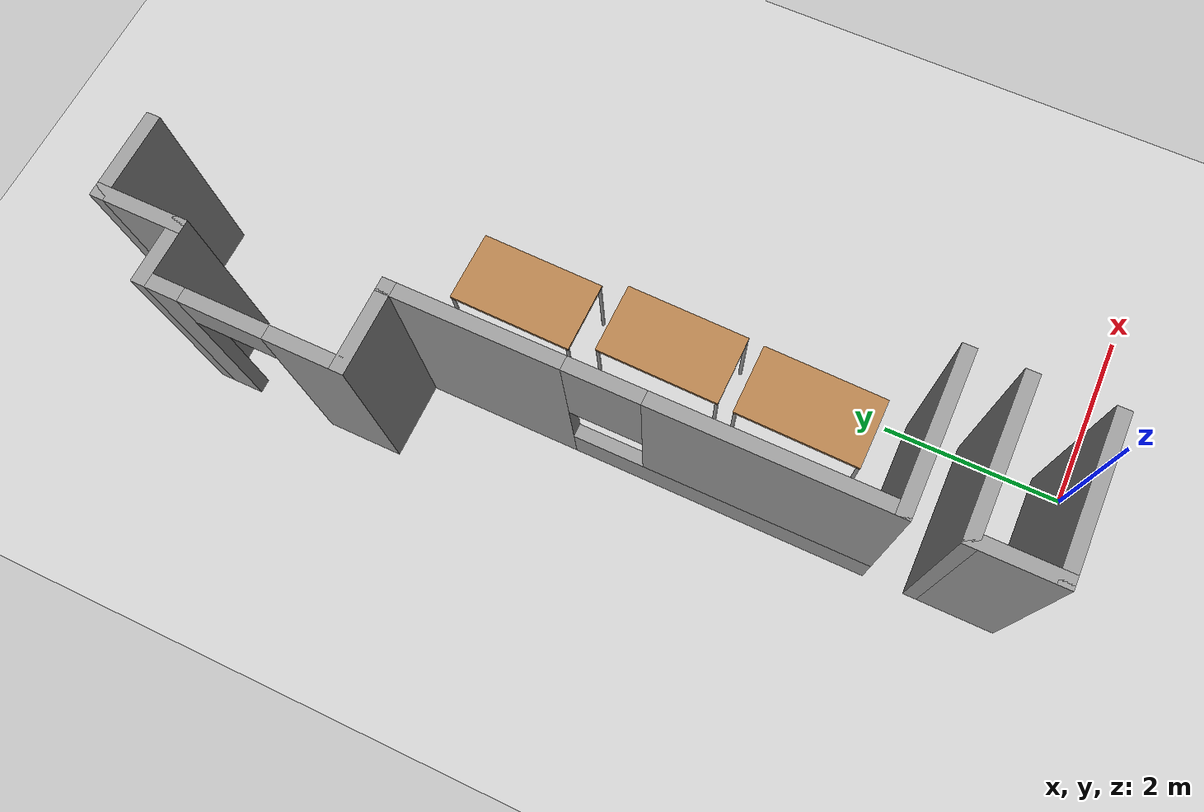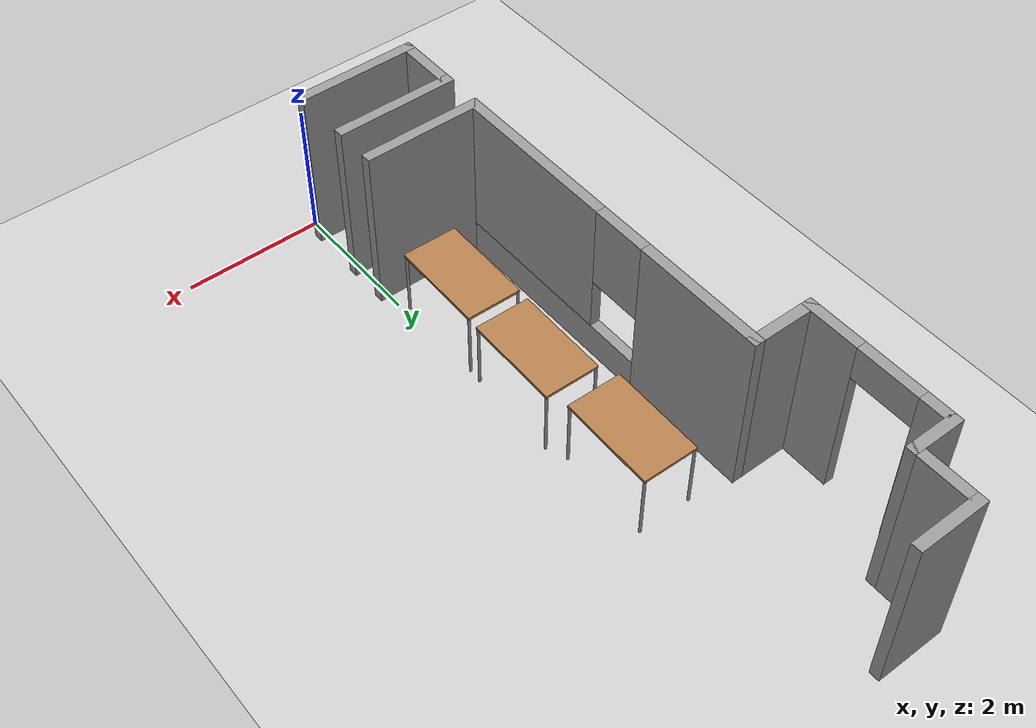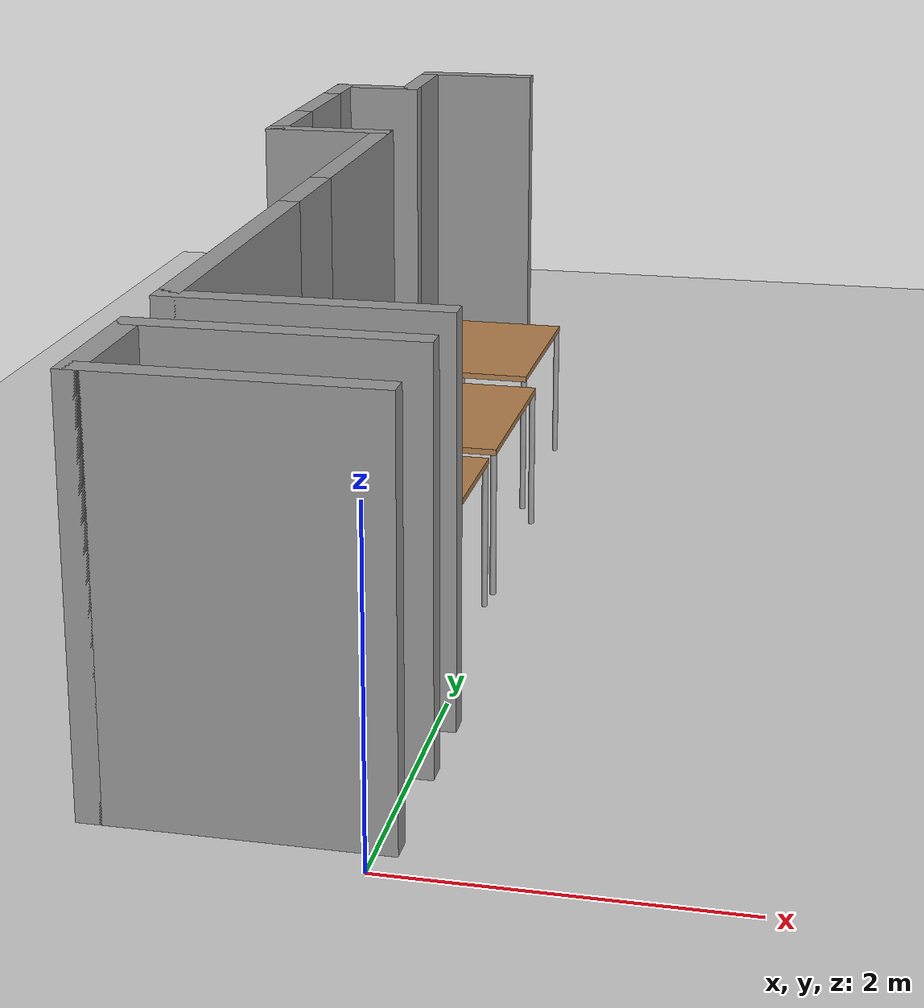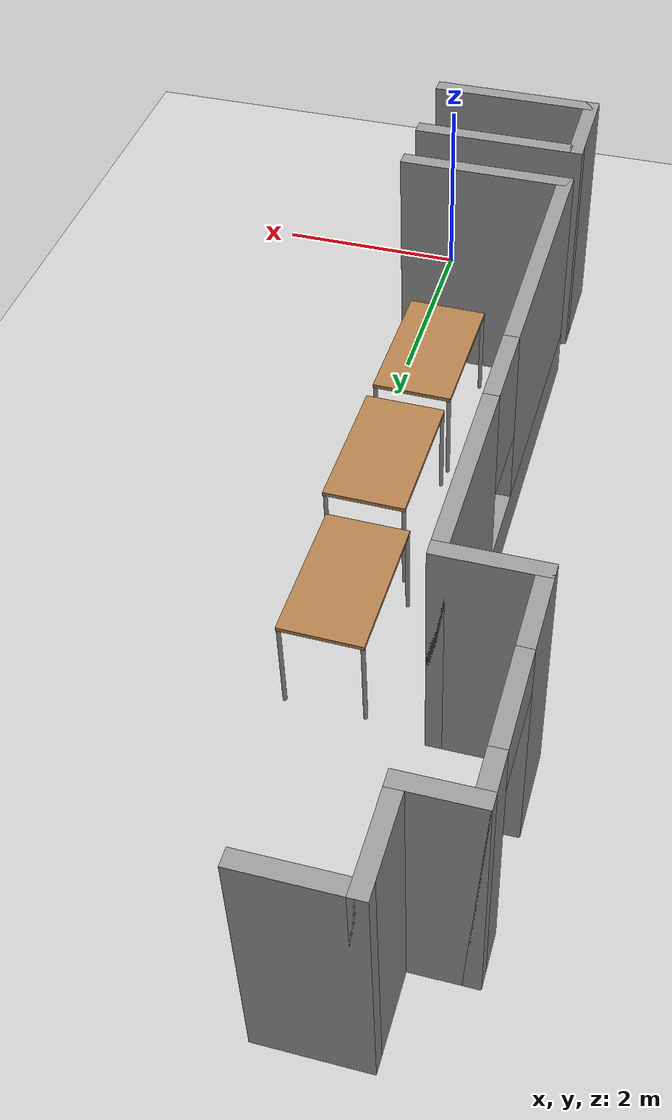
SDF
<sdf version="1.6">
 <world name="default">
  <model name="ground_plane">
   <static>1</static>
   <link name="link">
    <collision name="collision">
     <geometry><plane><normal>0 0 1</normal><size>100 100</size></plane></geometry>
     <surface><friction><ode><mu>100</mu><mu2>50</mu2></ode></friction></surface>
    </collision>
    <visual name="visual">
     <cast_shadows>0</cast_shadows>
     <geometry><plane><normal>0 0 1</normal><size>100 100</size></plane></geometry>
     <material>
      <script><uri>file://media/materials/scripts/gazebo.material</uri><name>Gazebo/Grey</name></script>
     </material>
    </visual>
   </link>
  </model>
  <model name="table">
   <static>0</static>
   <link name="link">
    <collision name="surface">
     <pose>0 0 1 0 -0 0</pose>
     <geometry><box><size>1.5 0.8 0.03</size></box></geometry>
     <surface><friction><ode><mu>0.6</mu><mu2>0.6</mu2></ode></friction></surface>
    </collision>
    <visual name="visual1">
     <pose>0 0 1 0 -0 0</pose>
     <geometry><box><size>1.4 0.8 0.04</size></box></geometry>
     <material>
      <script><uri>file://media/materials/scripts/gazebo.material</uri><name>Gazebo/Wood</name></script>
     </material>
    </visual>
    <collision name="front_left_leg">
     <pose>0.68 0.38 0.5 0 -0 0</pose>
     <geometry><cylinder><radius>0.02</radius><length>1</length></cylinder></geometry>
    </collision>
    <visual name="front_left_leg">
     <pose>0.68 0.38 0.5 0 -0 0</pose>
     <geometry><cylinder><radius>0.02</radius><length>1</length></cylinder></geometry>
     <material>
      <script><uri>file://media/materials/scripts/gazebo.material</uri><name>Gazebo/Grey</name></script>
     </material>
    </visual>
    <collision name="front_right_leg">
     <pose>0.68 -0.38 0.5 0 -0 0</pose>
     <geometry><cylinder><radius>0.02</radius><length>1</length></cylinder></geometry>
    </collision>
    <visual name="front_right_leg">
     <pose>0.68 -0.38 0.5 0 -0 0</pose>
     <geometry><cylinder><radius>0.02</radius><length>1</length></cylinder></geometry>
     <material>
      <script><uri>file://media/materials/scripts/gazebo.material</uri><name>Gazebo/Grey</name></script>
     </material>
    </visual>
    <collision name="back_right_leg">
     <pose>-0.68 -0.38 0.5 0 -0 0</pose>
     <geometry><cylinder><radius>0.02</radius><length>1</length></cylinder></geometry>
    </collision>
    <visual name="back_right_leg">
     <pose>-0.68 -0.38 0.5 0 -0 0</pose>
     <geometry><cylinder><radius>0.02</radius><length>1</length></cylinder></geometry>
     <material>
      <script><uri>file://media/materials/scripts/gazebo.material</uri><name>Gazebo/Grey</name></script>
     </material>
    </visual>
    <collision name="back_left_leg">
     <pose>-0.68 0.38 0.5 0 -0 0</pose>
     <geometry><cylinder><radius>0.02</radius><length>1</length></cylinder></geometry>
    </collision>
    <visual name="back_left_leg">
     <pose>-0.68 0.38 0.5 0 -0 0</pose>
     <geometry><cylinder><radius>0.02</radius><length>1</length></cylinder></geometry>
     <material>
      <script><uri>file://media/materials/scripts/gazebo.material</uri><name>Gazebo/Grey</name></script>
     </material>
    </visual>
    <inertial>
     <inertia><ixx>1</ixx><ixy>0</ixy><ixz>0</ixz><iyy>1</iyy><iyz>0</iyz><izz>1</izz></inertia>
     <mass>1</mass>
    </inertial>
   </link>
   <pose>-0.462285 2.82795 -9e-06 0 1e-06 1.55518</pose>
  </model>
  <model name="table_clone">
   <static>0</static>
   <link name="link">
    <collision name="surface">
     <pose>0 0 1 0 -0 0</pose>
     <geometry><box><size>1.5 0.8 0.03</size></box></geometry>
     <surface><friction><ode><mu>0.6</mu><mu2>0.6</mu2></ode></friction></surface>
    </collision>
    <visual name="visual1">
     <pose>0 0 1 0 -0 0</pose>
     <geometry><box><size>1.4 0.8 0.04</size></box></geometry>
     <material>
      <script><uri>file://media/materials/scripts/gazebo.material</uri><name>Gazebo/Wood</name></script>
     </material>
    </visual>
    <collision name="front_left_leg">
     <pose>0.68 0.38 0.5 0 -0 0</pose>
     <geometry><cylinder><radius>0.02</radius><length>1</length></cylinder></geometry>
    </collision>
    <visual name="front_left_leg">
     <pose>0.68 0.38 0.5 0 -0 0</pose>
     <geometry><cylinder><radius>0.02</radius><length>1</length></cylinder></geometry>
     <material>
      <script><uri>file://media/materials/scripts/gazebo.material</uri><name>Gazebo/Grey</name></script>
     </material>
    </visual>
    <collision name="front_right_leg">
     <pose>0.68 -0.38 0.5 0 -0 0</pose>
     <geometry><cylinder><radius>0.02</radius><length>1</length></cylinder></geometry>
    </collision>
    <visual name="front_right_leg">
     <pose>0.68 -0.38 0.5 0 -0 0</pose>
     <geometry><cylinder><radius>0.02</radius><length>1</length></cylinder></geometry>
     <material>
      <script><uri>file://media/materials/scripts/gazebo.material</uri><name>Gazebo/Grey</name></script>
     </material>
    </visual>
    <collision name="back_right_leg">
     <pose>-0.68 -0.38 0.5 0 -0 0</pose>
     <geometry><cylinder><radius>0.02</radius><length>1</length></cylinder></geometry>
    </collision>
    <visual name="back_right_leg">
     <pose>-0.68 -0.38 0.5 0 -0 0</pose>
     <geometry><cylinder><radius>0.02</radius><length>1</length></cylinder></geometry>
     <material>
      <script><uri>file://media/materials/scripts/gazebo.material</uri><name>Gazebo/Grey</name></script>
     </material>
    </visual>
    <collision name="back_left_leg">
     <pose>-0.68 0.38 0.5 0 -0 0</pose>
     <geometry><cylinder><radius>0.02</radius><length>1</length></cylinder></geometry>
    </collision>
    <visual name="back_left_leg">
     <pose>-0.68 0.38 0.5 0 -0 0</pose>
     <geometry><cylinder><radius>0.02</radius><length>1</length></cylinder></geometry>
     <material>
      <script><uri>file://media/materials/scripts/gazebo.material</uri><name>Gazebo/Grey</name></script>
     </material>
    </visual>
    <inertial>
     <inertia><ixx>1</ixx><ixy>0</ixy><ixz>0</ixz><iyy>1</iyy><iyz>0</iyz><izz>1</izz></inertia>
     <mass>1</mass>
    </inertial>
   </link>
   <pose>-0.425887 4.40027 -9e-06 0 1e-06 1.55518</pose>
  </model>
  <model name="table_clone_0">
   <static>0</static>
   <link name="link">
    <collision name="surface">
     <pose>0 0 1 0 -0 0</pose>
     <geometry><box><size>1.5 0.8 0.03</size></box></geometry>
     <surface><friction><ode><mu>0.6</mu><mu2>0.6</mu2></ode></friction></surface>
    </collision>
    <visual name="visual1">
     <pose>0 0 1 0 -0 0</pose>
     <geometry><box><size>1.4 0.8 0.04</size></box></geometry>
     <material>
      <script><uri>file://media/materials/scripts/gazebo.material</uri><name>Gazebo/Wood</name></script>
     </material>
    </visual>
    <collision name="front_left_leg">
     <pose>0.68 0.38 0.5 0 -0 0</pose>
     <geometry><cylinder><radius>0.02</radius><length>1</length></cylinder></geometry>
    </collision>
    <visual name="front_left_leg">
     <pose>0.68 0.38 0.5 0 -0 0</pose>
     <geometry><cylinder><radius>0.02</radius><length>1</length></cylinder></geometry>
     <material>
      <script><uri>file://media/materials/scripts/gazebo.material</uri><name>Gazebo/Grey</name></script>
     </material>
    </visual>
    <collision name="front_right_leg">
     <pose>0.68 -0.38 0.5 0 -0 0</pose>
     <geometry><cylinder><radius>0.02</radius><length>1</length></cylinder></geometry>
    </collision>
    <visual name="front_right_leg">
     <pose>0.68 -0.38 0.5 0 -0 0</pose>
     <geometry><cylinder><radius>0.02</radius><length>1</length></cylinder></geometry>
     <material>
      <script><uri>file://media/materials/scripts/gazebo.material</uri><name>Gazebo/Grey</name></script>
     </material>
    </visual>
    <collision name="back_right_leg">
     <pose>-0.68 -0.38 0.5 0 -0 0</pose>
     <geometry><cylinder><radius>0.02</radius><length>1</length></cylinder></geometry>
    </collision>
    <visual name="back_right_leg">
     <pose>-0.68 -0.38 0.5 0 -0 0</pose>
     <geometry><cylinder><radius>0.02</radius><length>1</length></cylinder></geometry>
     <material>
      <script><uri>file://media/materials/scripts/gazebo.material</uri><name>Gazebo/Grey</name></script>
     </material>
    </visual>
    <collision name="back_left_leg">
     <pose>-0.68 0.38 0.5 0 -0 0</pose>
     <geometry><cylinder><radius>0.02</radius><length>1</length></cylinder></geometry>
    </collision>
    <visual name="back_left_leg">
     <pose>-0.68 0.38 0.5 0 -0 0</pose>
     <geometry><cylinder><radius>0.02</radius><length>1</length></cylinder></geometry>
     <material>
      <script><uri>file://media/materials/scripts/gazebo.material</uri><name>Gazebo/Grey</name></script>
     </material>
    </visual>
    <inertial>
     <inertia><ixx>1</ixx><ixy>0</ixy><ixz>0</ixz><iyy>1</iyy><iyz>0</iyz><izz>1</izz></inertia>
     <mass>1</mass>
    </inertial>
   </link>
   <pose>-0.519405 6.05381 -9e-06 0 1e-06 1.55518</pose>
  </model>
  <model name="paredes_simplepilab_0">
   <link name="Wall_10">
    <pose>-6.50578 1.29029 0 0 -0 0</pose>
    <visual name="Wall_10_Visual">
     <pose>0 0 1.25 0 -0 0</pose>
     <geometry><box><size>1 0.15 2.5</size></box></geometry>
     <material>
      <script><uri>file://media/materials/scripts/gazebo.material</uri><name>Gazebo/Grey</name></script>
      <ambient>1 1 1 1</ambient>
      <diffuse>0.7 0.7 0.7 1</diffuse>
      <specular>0.01 0.01 0.01 1</specular>
      <emissive>0 0 0 1</emissive>
     </material>
    </visual>
    <collision name="Wall_10_Collision">
     <pose>0 0 1.25 0 -0 0</pose>
     <geometry><box><size>1 0.15 2.5</size></box></geometry>
     <surface>
      <friction>
       <ode><mu>1</mu><mu2>1</mu2><fdir1>0 0 0</fdir1><slip1>0</slip1><slip2>0</slip2></ode>
       <torsional>
        <coefficient>1</coefficient>
        <patch_radius>0</patch_radius>
        <surface_radius>0</surface_radius>
        <use_patch_radius>1</use_patch_radius>
        <ode><slip>0</slip></ode>
       </torsional>
      </friction>
      <bounce><restitution_coefficient>0</restitution_coefficient><threshold>1e+06</threshold></bounce>
      <contact>
       <collide_without_contact>0</collide_without_contact>
       <collide_without_contact_bitmask>1</collide_without_contact_bitmask>
       <collide_bitmask>1</collide_bitmask>
       <ode>
        <soft_cfm>0</soft_cfm>
        <soft_erp>0.2</soft_erp>
        <kp>1e+13</kp>
        <kd>1</kd>
        <max_vel>0.01</max_vel>
        <min_depth>0</min_depth>
       </ode>
       <bullet>
        <split_impulse>1</split_impulse>
        <split_impulse_penetration_threshold>-0.01</split_impulse_penetration_threshold>
        <soft_cfm>0</soft_cfm>
        <soft_erp>0.2</soft_erp>
        <kp>1e+13</kp>
        <kd>1</kd>
       </bullet>
      </contact>
     </surface>
    </collision>
   </link>
   <link name="Wall_11">
    <pose>-6.08078 -1.25971 0 0 0 -1.5708</pose>
    <visual name="Wall_11_Visual_0">
     <pose>-1.67591 0 1.25 0 -0 0</pose>
     <geometry><box><size>1.89818 0.15 2.5</size></box></geometry>
     <material>
      <script><uri>file://media/materials/scripts/gazebo.material</uri><name>Gazebo/Grey</name></script>
      <ambient>1 1 1 1</ambient>
      <diffuse>0.7 0.7 0.7 1</diffuse>
      <specular>0.01 0.01 0.01 1</specular>
      <emissive>0 0 0 1</emissive>
     </material>
    </visual>
    <visual name="Wall_11_Visual_1">
     <pose>0.94909 0 0.25 0 -0 0</pose>
     <geometry><box><size>3.35182 0.15 0.5</size></box></geometry>
     <material>
      <script><uri>file://media/materials/scripts/gazebo.material</uri><name>Gazebo/Grey</name></script>
      <ambient>1 1 1 1</ambient>
      <diffuse>0.7 0.7 0.7 1</diffuse>
      <specular>0.01 0.01 0.01 1</specular>
      <emissive>0 0 0 1</emissive>
     </material>
    </visual>
    <visual name="Wall_11_Visual_2">
     <pose>1.34909 0 1.5 0 -0 0</pose>
     <geometry><box><size>2.55182 0.15 2</size></box></geometry>
     <material>
      <script><uri>file://media/materials/scripts/gazebo.material</uri><name>Gazebo/Grey</name></script>
      <ambient>1 1 1 1</ambient>
      <diffuse>0.7 0.7 0.7 1</diffuse>
      <specular>0.01 0.01 0.01 1</specular>
      <emissive>0 0 0 1</emissive>
     </material>
    </visual>
    <visual name="Wall_11_Visual_3">
     <pose>-0.32682 0 1.9 0 -0 0</pose>
     <geometry><box><size>0.8 0.15 1.2</size></box></geometry>
     <material>
      <script><uri>file://media/materials/scripts/gazebo.material</uri><name>Gazebo/Grey</name></script>
      <ambient>1 1 1 1</ambient>
      <diffuse>0.7 0.7 0.7 1</diffuse>
      <specular>0.01 0.01 0.01 1</specular>
      <emissive>0 0 0 1</emissive>
     </material>
    </visual>
    <collision name="Wall_11_Collision_0">
     <pose>-1.67591 0 1.25 0 -0 0</pose>
     <geometry><box><size>1.89818 0.15 2.5</size></box></geometry>
     <surface>
      <friction>
       <ode><mu>1</mu><mu2>1</mu2><fdir1>0 0 0</fdir1><slip1>0</slip1><slip2>0</slip2></ode>
       <torsional>
        <coefficient>1</coefficient>
        <patch_radius>0</patch_radius>
        <surface_radius>0</surface_radius>
        <use_patch_radius>1</use_patch_radius>
        <ode><slip>0</slip></ode>
       </torsional>
      </friction>
      <bounce><restitution_coefficient>0</restitution_coefficient><threshold>1e+06</threshold></bounce>
      <contact>
       <collide_without_contact>0</collide_without_contact>
       <collide_without_contact_bitmask>1</collide_without_contact_bitmask>
       <collide_bitmask>1</collide_bitmask>
       <ode>
        <soft_cfm>0</soft_cfm>
        <soft_erp>0.2</soft_erp>
        <kp>1e+13</kp>
        <kd>1</kd>
        <max_vel>0.01</max_vel>
        <min_depth>0</min_depth>
       </ode>
       <bullet>
        <split_impulse>1</split_impulse>
        <split_impulse_penetration_threshold>-0.01</split_impulse_penetration_threshold>
        <soft_cfm>0</soft_cfm>
        <soft_erp>0.2</soft_erp>
        <kp>1e+13</kp>
        <kd>1</kd>
       </bullet>
      </contact>
     </surface>
    </collision>
    <collision name="Wall_11_Collision_1">
     <pose>0.94909 0 0.25 0 -0 0</pose>
     <geometry><box><size>3.35182 0.15 0.5</size></box></geometry>
     <surface>
      <friction>
       <ode><mu>1</mu><mu2>1</mu2><fdir1>0 0 0</fdir1><slip1>0</slip1><slip2>0</slip2></ode>
       <torsional>
        <coefficient>1</coefficient>
        <patch_radius>0</patch_radius>
        <surface_radius>0</surface_radius>
        <use_patch_radius>1</use_patch_radius>
        <ode><slip>0</slip></ode>
       </torsional>
      </friction>
      <bounce><restitution_coefficient>0</restitution_coefficient><threshold>1e+06</threshold></bounce>
      <contact>
       <collide_without_contact>0</collide_without_contact>
       <collide_without_contact_bitmask>1</collide_without_contact_bitmask>
       <collide_bitmask>1</collide_bitmask>
       <ode>
        <soft_cfm>0</soft_cfm>
        <soft_erp>0.2</soft_erp>
        <kp>1e+13</kp>
        <kd>1</kd>
        <max_vel>0.01</max_vel>
        <min_depth>0</min_depth>
       </ode>
       <bullet>
        <split_impulse>1</split_impulse>
        <split_impulse_penetration_threshold>-0.01</split_impulse_penetration_threshold>
        <soft_cfm>0</soft_cfm>
        <soft_erp>0.2</soft_erp>
        <kp>1e+13</kp>
        <kd>1</kd>
       </bullet>
      </contact>
     </surface>
    </collision>
    <collision name="Wall_11_Collision_2">
     <pose>1.34909 0 1.5 0 -0 0</pose>
     <geometry><box><size>2.55182 0.15 2</size></box></geometry>
     <surface>
      <friction>
       <ode><mu>1</mu><mu2>1</mu2><fdir1>0 0 0</fdir1><slip1>0</slip1><slip2>0</slip2></ode>
       <torsional>
        <coefficient>1</coefficient>
        <patch_radius>0</patch_radius>
        <surface_radius>0</surface_radius>
        <use_patch_radius>1</use_patch_radius>
        <ode><slip>0</slip></ode>
       </torsional>
      </friction>
      <bounce><restitution_coefficient>0</restitution_coefficient><threshold>1e+06</threshold></bounce>
      <contact>
       <collide_without_contact>0</collide_without_contact>
       <collide_without_contact_bitmask>1</collide_without_contact_bitmask>
       <collide_bitmask>1</collide_bitmask>
       <ode>
        <soft_cfm>0</soft_cfm>
        <soft_erp>0.2</soft_erp>
        <kp>1e+13</kp>
        <kd>1</kd>
        <max_vel>0.01</max_vel>
        <min_depth>0</min_depth>
       </ode>
       <bullet>
        <split_impulse>1</split_impulse>
        <split_impulse_penetration_threshold>-0.01</split_impulse_penetration_threshold>
        <soft_cfm>0</soft_cfm>
        <soft_erp>0.2</soft_erp>
        <kp>1e+13</kp>
        <kd>1</kd>
       </bullet>
      </contact>
     </surface>
    </collision>
    <collision name="Wall_11_Collision_3">
     <pose>-0.32682 0 1.9 0 -0 0</pose>
     <geometry><box><size>0.8 0.15 1.2</size></box></geometry>
     <surface>
      <friction>
       <ode><mu>1</mu><mu2>1</mu2><fdir1>0 0 0</fdir1><slip1>0</slip1><slip2>0</slip2></ode>
       <torsional>
        <coefficient>1</coefficient>
        <patch_radius>0</patch_radius>
        <surface_radius>0</surface_radius>
        <use_patch_radius>1</use_patch_radius>
        <ode><slip>0</slip></ode>
       </torsional>
      </friction>
      <bounce><restitution_coefficient>0</restitution_coefficient><threshold>1e+06</threshold></bounce>
      <contact>
       <collide_without_contact>0</collide_without_contact>
       <collide_without_contact_bitmask>1</collide_without_contact_bitmask>
       <collide_bitmask>1</collide_bitmask>
       <ode>
        <soft_cfm>0</soft_cfm>
        <soft_erp>0.2</soft_erp>
        <kp>1e+13</kp>
        <kd>1</kd>
        <max_vel>0.01</max_vel>
        <min_depth>0</min_depth>
       </ode>
       <bullet>
        <split_impulse>1</split_impulse>
        <split_impulse_penetration_threshold>-0.01</split_impulse_penetration_threshold>
        <soft_cfm>0</soft_cfm>
        <soft_erp>0.2</soft_erp>
        <kp>1e+13</kp>
        <kd>1</kd>
       </bullet>
      </contact>
     </surface>
    </collision>
   </link>
   <link name="Wall_12">
    <pose>-5.28078 -3.80971 0 0 -0 0</pose>
    <visual name="Wall_12_Visual">
     <pose>0 0 1.25 0 -0 0</pose>
     <geometry><box><size>1.75 0.15 2.5</size></box></geometry>
     <material>
      <script><uri>file://media/materials/scripts/gazebo.material</uri><name>Gazebo/Grey</name></script>
      <ambient>1 1 1 1</ambient>
      <diffuse>0.7 0.7 0.7 1</diffuse>
      <specular>0.01 0.01 0.01 1</specular>
      <emissive>0 0 0 1</emissive>
     </material>
    </visual>
    <collision name="Wall_12_Collision">
     <pose>0 0 1.25 0 -0 0</pose>
     <geometry><box><size>1.75 0.15 2.5</size></box></geometry>
     <surface>
      <friction>
       <ode><mu>1</mu><mu2>1</mu2><fdir1>0 0 0</fdir1><slip1>0</slip1><slip2>0</slip2></ode>
       <torsional>
        <coefficient>1</coefficient>
        <patch_radius>0</patch_radius>
        <surface_radius>0</surface_radius>
        <use_patch_radius>1</use_patch_radius>
        <ode><slip>0</slip></ode>
       </torsional>
      </friction>
      <bounce><restitution_coefficient>0</restitution_coefficient><threshold>1e+06</threshold></bounce>
      <contact>
       <collide_without_contact>0</collide_without_contact>
       <collide_without_contact_bitmask>1</collide_without_contact_bitmask>
       <collide_bitmask>1</collide_bitmask>
       <ode>
        <soft_cfm>0</soft_cfm>
        <soft_erp>0.2</soft_erp>
        <kp>1e+13</kp>
        <kd>1</kd>
        <max_vel>0.01</max_vel>
        <min_depth>0</min_depth>
       </ode>
       <bullet>
        <split_impulse>1</split_impulse>
        <split_impulse_penetration_threshold>-0.01</split_impulse_penetration_threshold>
        <soft_cfm>0</soft_cfm>
        <soft_erp>0.2</soft_erp>
        <kp>1e+13</kp>
        <kd>1</kd>
       </bullet>
      </contact>
     </surface>
    </collision>
   </link>
   <link name="Wall_14">
    <pose>-5.28078 -4.40971 0 0 -0 3.14159</pose>
    <visual name="Wall_14_Visual">
     <pose>0 0 1.25 0 -0 0</pose>
     <geometry><box><size>1.75 0.15 2.5</size></box></geometry>
     <material>
      <script><uri>file://media/materials/scripts/gazebo.material</uri><name>Gazebo/Grey</name></script>
      <ambient>1 1 1 1</ambient>
      <diffuse>0.7 0.7 0.7 1</diffuse>
      <specular>0.01 0.01 0.01 1</specular>
      <emissive>0 0 0 1</emissive>
     </material>
    </visual>
    <collision name="Wall_14_Collision">
     <pose>0 0 1.25 0 -0 0</pose>
     <geometry><box><size>1.75 0.15 2.5</size></box></geometry>
     <surface>
      <friction>
       <ode><mu>1</mu><mu2>1</mu2><fdir1>0 0 0</fdir1><slip1>0</slip1><slip2>0</slip2></ode>
       <torsional>
        <coefficient>1</coefficient>
        <patch_radius>0</patch_radius>
        <surface_radius>0</surface_radius>
        <use_patch_radius>1</use_patch_radius>
        <ode><slip>0</slip></ode>
       </torsional>
      </friction>
      <bounce><restitution_coefficient>0</restitution_coefficient><threshold>1e+06</threshold></bounce>
      <contact>
       <collide_without_contact>0</collide_without_contact>
       <collide_without_contact_bitmask>1</collide_without_contact_bitmask>
       <collide_bitmask>1</collide_bitmask>
       <ode>
        <soft_cfm>0</soft_cfm>
        <soft_erp>0.2</soft_erp>
        <kp>1e+13</kp>
        <kd>1</kd>
        <max_vel>0.01</max_vel>
        <min_depth>0</min_depth>
       </ode>
       <bullet>
        <split_impulse>1</split_impulse>
        <split_impulse_penetration_threshold>-0.01</split_impulse_penetration_threshold>
        <soft_cfm>0</soft_cfm>
        <soft_erp>0.2</soft_erp>
        <kp>1e+13</kp>
        <kd>1</kd>
       </bullet>
      </contact>
     </surface>
    </collision>
   </link>
   <link name="Wall_15">
    <pose>-6.08078 -4.83471 0 0 0 -1.5708</pose>
    <visual name="Wall_15_Visual">
     <pose>0 0 1.25 0 -0 0</pose>
     <geometry><box><size>1 0.15 2.5</size></box></geometry>
     <material>
      <script><uri>file://media/materials/scripts/gazebo.material</uri><name>Gazebo/Grey</name></script>
      <ambient>1 1 1 1</ambient>
      <diffuse>0.7 0.7 0.7 1</diffuse>
      <specular>0.01 0.01 0.01 1</specular>
      <emissive>0 0 0 1</emissive>
     </material>
    </visual>
    <collision name="Wall_15_Collision">
     <pose>0 0 1.25 0 -0 0</pose>
     <geometry><box><size>1 0.15 2.5</size></box></geometry>
     <surface>
      <friction>
       <ode><mu>1</mu><mu2>1</mu2><fdir1>0 0 0</fdir1><slip1>0</slip1><slip2>0</slip2></ode>
       <torsional>
        <coefficient>1</coefficient>
        <patch_radius>0</patch_radius>
        <surface_radius>0</surface_radius>
        <use_patch_radius>1</use_patch_radius>
        <ode><slip>0</slip></ode>
       </torsional>
      </friction>
      <bounce><restitution_coefficient>0</restitution_coefficient><threshold>1e+06</threshold></bounce>
      <contact>
       <collide_without_contact>0</collide_without_contact>
       <collide_without_contact_bitmask>1</collide_without_contact_bitmask>
       <collide_bitmask>1</collide_bitmask>
       <ode>
        <soft_cfm>0</soft_cfm>
        <soft_erp>0.2</soft_erp>
        <kp>1e+13</kp>
        <kd>1</kd>
        <max_vel>0.01</max_vel>
        <min_depth>0</min_depth>
       </ode>
       <bullet>
        <split_impulse>1</split_impulse>
        <split_impulse_penetration_threshold>-0.01</split_impulse_penetration_threshold>
        <soft_cfm>0</soft_cfm>
        <soft_erp>0.2</soft_erp>
        <kp>1e+13</kp>
        <kd>1</kd>
       </bullet>
      </contact>
     </surface>
    </collision>
   </link>
   <link name="Wall_16">
    <pose>-5.28078 -5.25971 0 0 -0 0</pose>
    <visual name="Wall_16_Visual">
     <pose>0 0 1.25 0 -0 0</pose>
     <geometry><box><size>1.75 0.15 2.5</size></box></geometry>
     <material>
      <script><uri>file://media/materials/scripts/gazebo.material</uri><name>Gazebo/Grey</name></script>
      <ambient>1 1 1 1</ambient>
      <diffuse>0.7 0.7 0.7 1</diffuse>
      <specular>0.01 0.01 0.01 1</specular>
      <emissive>0 0 0 1</emissive>
     </material>
    </visual>
    <collision name="Wall_16_Collision">
     <pose>0 0 1.25 0 -0 0</pose>
     <geometry><box><size>1.75 0.15 2.5</size></box></geometry>
     <surface>
      <friction>
       <ode><mu>1</mu><mu2>1</mu2><fdir1>0 0 0</fdir1><slip1>0</slip1><slip2>0</slip2></ode>
       <torsional>
        <coefficient>1</coefficient>
        <patch_radius>0</patch_radius>
        <surface_radius>0</surface_radius>
        <use_patch_radius>1</use_patch_radius>
        <ode><slip>0</slip></ode>
       </torsional>
      </friction>
      <bounce><restitution_coefficient>0</restitution_coefficient><threshold>1e+06</threshold></bounce>
      <contact>
       <collide_without_contact>0</collide_without_contact>
       <collide_without_contact_bitmask>1</collide_without_contact_bitmask>
       <collide_bitmask>1</collide_bitmask>
       <ode>
        <soft_cfm>0</soft_cfm>
        <soft_erp>0.2</soft_erp>
        <kp>1e+13</kp>
        <kd>1</kd>
        <max_vel>0.01</max_vel>
        <min_depth>0</min_depth>
       </ode>
       <bullet>
        <split_impulse>1</split_impulse>
        <split_impulse_penetration_threshold>-0.01</split_impulse_penetration_threshold>
        <soft_cfm>0</soft_cfm>
        <soft_erp>0.2</soft_erp>
        <kp>1e+13</kp>
        <kd>1</kd>
       </bullet>
      </contact>
     </surface>
    </collision>
   </link>
   <link name="Wall_6">
    <pose>-5.90578 4.24029 0 0 -0 3.14159</pose>
    <visual name="Wall_6_Visual">
     <pose>0 0 1.25 0 -0 0</pose>
     <geometry><box><size>1 0.15 2.5</size></box></geometry>
     <material>
      <script><uri>file://media/materials/scripts/gazebo.material</uri><name>Gazebo/Grey</name></script>
      <ambient>1 1 1 1</ambient>
      <diffuse>0.7 0.7 0.7 1</diffuse>
      <specular>0.01 0.01 0.01 1</specular>
      <emissive>0 0 0 1</emissive>
     </material>
    </visual>
    <collision name="Wall_6_Collision">
     <pose>0 0 1.25 0 -0 0</pose>
     <geometry><box><size>1 0.15 2.5</size></box></geometry>
     <surface>
      <friction>
       <ode><mu>1</mu><mu2>1</mu2><fdir1>0 0 0</fdir1><slip1>0</slip1><slip2>0</slip2></ode>
       <torsional>
        <coefficient>1</coefficient>
        <patch_radius>0</patch_radius>
        <surface_radius>0</surface_radius>
        <use_patch_radius>1</use_patch_radius>
        <ode><slip>0</slip></ode>
       </torsional>
      </friction>
      <bounce><restitution_coefficient>0</restitution_coefficient><threshold>1e+06</threshold></bounce>
      <contact>
       <collide_without_contact>0</collide_without_contact>
       <collide_without_contact_bitmask>1</collide_without_contact_bitmask>
       <collide_bitmask>1</collide_bitmask>
       <ode>
        <soft_cfm>0</soft_cfm>
        <soft_erp>0.2</soft_erp>
        <kp>1e+13</kp>
        <kd>1</kd>
        <max_vel>0.01</max_vel>
        <min_depth>0</min_depth>
       </ode>
       <bullet>
        <split_impulse>1</split_impulse>
        <split_impulse_penetration_threshold>-0.01</split_impulse_penetration_threshold>
        <soft_cfm>0</soft_cfm>
        <soft_erp>0.2</soft_erp>
        <kp>1e+13</kp>
        <kd>1</kd>
       </bullet>
      </contact>
     </surface>
    </collision>
   </link>
   <link name="Wall_7">
    <pose>-6.33078 3.81529 0 0 0 -1.5708</pose>
    <visual name="Wall_7_Visual">
     <pose>0 0 1.25 0 -0 0</pose>
     <geometry><box><size>1 0.15 2.5</size></box></geometry>
     <material>
      <script><uri>file://media/materials/scripts/gazebo.material</uri><name>Gazebo/Grey</name></script>
      <ambient>1 1 1 1</ambient>
      <diffuse>0.7 0.7 0.7 1</diffuse>
      <specular>0.01 0.01 0.01 1</specular>
      <emissive>0 0 0 1</emissive>
     </material>
    </visual>
    <collision name="Wall_7_Collision">
     <pose>0 0 1.25 0 -0 0</pose>
     <geometry><box><size>1 0.15 2.5</size></box></geometry>
     <surface>
      <friction>
       <ode><mu>1</mu><mu2>1</mu2><fdir1>0 0 0</fdir1><slip1>0</slip1><slip2>0</slip2></ode>
       <torsional>
        <coefficient>1</coefficient>
        <patch_radius>0</patch_radius>
        <surface_radius>0</surface_radius>
        <use_patch_radius>1</use_patch_radius>
        <ode><slip>0</slip></ode>
       </torsional>
      </friction>
      <bounce><restitution_coefficient>0</restitution_coefficient><threshold>1e+06</threshold></bounce>
      <contact>
       <collide_without_contact>0</collide_without_contact>
       <collide_without_contact_bitmask>1</collide_without_contact_bitmask>
       <collide_bitmask>1</collide_bitmask>
       <ode>
        <soft_cfm>0</soft_cfm>
        <soft_erp>0.2</soft_erp>
        <kp>1e+13</kp>
        <kd>1</kd>
        <max_vel>0.01</max_vel>
        <min_depth>0</min_depth>
       </ode>
       <bullet>
        <split_impulse>1</split_impulse>
        <split_impulse_penetration_threshold>-0.01</split_impulse_penetration_threshold>
        <soft_cfm>0</soft_cfm>
        <soft_erp>0.2</soft_erp>
        <kp>1e+13</kp>
        <kd>1</kd>
       </bullet>
      </contact>
     </surface>
    </collision>
   </link>
   <link name="Wall_8">
    <pose>-6.63078 3.39029 0 0 -0 3.14159</pose>
    <visual name="Wall_8_Visual">
     <pose>0 0 1.25 0 -0 0</pose>
     <geometry><box><size>0.75 0.15 2.5</size></box></geometry>
     <material>
      <script><uri>file://media/materials/scripts/gazebo.material</uri><name>Gazebo/Grey</name></script>
      <ambient>1 1 1 1</ambient>
      <diffuse>0.7 0.7 0.7 1</diffuse>
      <specular>0.01 0.01 0.01 1</specular>
      <emissive>0 0 0 1</emissive>
     </material>
    </visual>
    <collision name="Wall_8_Collision">
     <pose>0 0 1.25 0 -0 0</pose>
     <geometry><box><size>0.75 0.15 2.5</size></box></geometry>
     <surface>
      <friction>
       <ode><mu>1</mu><mu2>1</mu2><fdir1>0 0 0</fdir1><slip1>0</slip1><slip2>0</slip2></ode>
       <torsional>
        <coefficient>1</coefficient>
        <patch_radius>0</patch_radius>
        <surface_radius>0</surface_radius>
        <use_patch_radius>1</use_patch_radius>
        <ode><slip>0</slip></ode>
       </torsional>
      </friction>
      <bounce><restitution_coefficient>0</restitution_coefficient><threshold>1e+06</threshold></bounce>
      <contact>
       <collide_without_contact>0</collide_without_contact>
       <collide_without_contact_bitmask>1</collide_without_contact_bitmask>
       <collide_bitmask>1</collide_bitmask>
       <ode>
        <soft_cfm>0</soft_cfm>
        <soft_erp>0.2</soft_erp>
        <kp>1e+13</kp>
        <kd>1</kd>
        <max_vel>0.01</max_vel>
        <min_depth>0</min_depth>
       </ode>
       <bullet>
        <split_impulse>1</split_impulse>
        <split_impulse_penetration_threshold>-0.01</split_impulse_penetration_threshold>
        <soft_cfm>0</soft_cfm>
        <soft_erp>0.2</soft_erp>
        <kp>1e+13</kp>
        <kd>1</kd>
       </bullet>
      </contact>
     </surface>
    </collision>
   </link>
   <link name="Wall_9">
    <pose>-6.93078 2.34029 0 0 0 -1.5708</pose>
    <visual name="Wall_9_Visual_0">
     <pose>-0.875304 0 1.25 0 -0 0</pose>
     <geometry><box><size>0.499393 0.15 2.5</size></box></geometry>
     <material>
      <script><uri>file://media/materials/scripts/gazebo.material</uri><name>Gazebo/Grey</name></script>
      <ambient>1 1 1 1</ambient>
      <diffuse>0.7 0.7 0.7 1</diffuse>
      <specular>0.01 0.01 0.01 1</specular>
      <emissive>0 0 0 1</emissive>
     </material>
    </visual>
    <visual name="Wall_9_Visual_2">
     <pose>-0.175607 0 2.25 0 -0 0</pose>
     <geometry><box><size>0.9 0.15 0.5</size></box></geometry>
     <material>
      <script><uri>file://media/materials/scripts/gazebo.material</uri><name>Gazebo/Grey</name></script>
      <ambient>1 1 1 1</ambient>
      <diffuse>0.7 0.7 0.7 1</diffuse>
      <specular>0.01 0.01 0.01 1</specular>
      <emissive>0 0 0 1</emissive>
     </material>
    </visual>
    <visual name="Wall_9_Visual_1">
     <pose>0.699696 0 1.25 0 -0 0</pose>
     <geometry><box><size>0.850607 0.15 2.5</size></box></geometry>
     <material>
      <script><uri>file://media/materials/scripts/gazebo.material</uri><name>Gazebo/Grey</name></script>
      <ambient>1 1 1 1</ambient>
      <diffuse>0.7 0.7 0.7 1</diffuse>
      <specular>0.01 0.01 0.01 1</specular>
      <emissive>0 0 0 1</emissive>
     </material>
    </visual>
    <collision name="Wall_9_Collision_0">
     <pose>-0.875304 0 1.25 0 -0 0</pose>
     <geometry><box><size>0.499393 0.15 2.5</size></box></geometry>
     <surface>
      <friction>
       <ode><mu>1</mu><mu2>1</mu2><fdir1>0 0 0</fdir1><slip1>0</slip1><slip2>0</slip2></ode>
       <torsional>
        <coefficient>1</coefficient>
        <patch_radius>0</patch_radius>
        <surface_radius>0</surface_radius>
        <use_patch_radius>1</use_patch_radius>
        <ode><slip>0</slip></ode>
       </torsional>
      </friction>
      <bounce><restitution_coefficient>0</restitution_coefficient><threshold>1e+06</threshold></bounce>
      <contact>
       <collide_without_contact>0</collide_without_contact>
       <collide_without_contact_bitmask>1</collide_without_contact_bitmask>
       <collide_bitmask>1</collide_bitmask>
       <ode>
        <soft_cfm>0</soft_cfm>
        <soft_erp>0.2</soft_erp>
        <kp>1e+13</kp>
        <kd>1</kd>
        <max_vel>0.01</max_vel>
        <min_depth>0</min_depth>
       </ode>
       <bullet>
        <split_impulse>1</split_impulse>
        <split_impulse_penetration_threshold>-0.01</split_impulse_penetration_threshold>
        <soft_cfm>0</soft_cfm>
        <soft_erp>0.2</soft_erp>
        <kp>1e+13</kp>
        <kd>1</kd>
       </bullet>
      </contact>
     </surface>
    </collision>
    <collision name="Wall_9_Collision_1">
     <pose>0.699696 0 1.25 0 -0 0</pose>
     <geometry><box><size>0.850607 0.15 2.5</size></box></geometry>
     <surface>
      <friction>
       <ode><mu>1</mu><mu2>1</mu2><fdir1>0 0 0</fdir1><slip1>0</slip1><slip2>0</slip2></ode>
       <torsional>
        <coefficient>1</coefficient>
        <patch_radius>0</patch_radius>
        <surface_radius>0</surface_radius>
        <use_patch_radius>1</use_patch_radius>
        <ode><slip>0</slip></ode>
       </torsional>
      </friction>
      <bounce><restitution_coefficient>0</restitution_coefficient><threshold>1e+06</threshold></bounce>
      <contact>
       <collide_without_contact>0</collide_without_contact>
       <collide_without_contact_bitmask>1</collide_without_contact_bitmask>
       <collide_bitmask>1</collide_bitmask>
       <ode>
        <soft_cfm>0</soft_cfm>
        <soft_erp>0.2</soft_erp>
        <kp>1e+13</kp>
        <kd>1</kd>
        <max_vel>0.01</max_vel>
        <min_depth>0</min_depth>
       </ode>
       <bullet>
        <split_impulse>1</split_impulse>
        <split_impulse_penetration_threshold>-0.01</split_impulse_penetration_threshold>
        <soft_cfm>0</soft_cfm>
        <soft_erp>0.2</soft_erp>
        <kp>1e+13</kp>
        <kd>1</kd>
       </bullet>
      </contact>
     </surface>
    </collision>
    <collision name="Wall_9_Collision_2">
     <pose>-0.175607 0 2.25 0 -0 0</pose>
     <geometry><box><size>0.9 0.15 0.5</size></box></geometry>
     <surface>
      <friction>
       <ode><mu>1</mu><mu2>1</mu2><fdir1>0 0 0</fdir1><slip1>0</slip1><slip2>0</slip2></ode>
       <torsional>
        <coefficient>1</coefficient>
        <patch_radius>0</patch_radius>
        <surface_radius>0</surface_radius>
        <use_patch_radius>1</use_patch_radius>
        <ode><slip>0</slip></ode>
       </torsional>
      </friction>
      <bounce><restitution_coefficient>0</restitution_coefficient><threshold>1e+06</threshold></bounce>
      <contact>
       <collide_without_contact>0</collide_without_contact>
       <collide_without_contact_bitmask>1</collide_without_contact_bitmask>
       <collide_bitmask>1</collide_bitmask>
       <ode>
        <soft_cfm>0</soft_cfm>
        <soft_erp>0.2</soft_erp>
        <kp>1e+13</kp>
        <kd>1</kd>
        <max_vel>0.01</max_vel>
        <min_depth>0</min_depth>
       </ode>
       <bullet>
        <split_impulse>1</split_impulse>
        <split_impulse_penetration_threshold>-0.01</split_impulse_penetration_threshold>
        <soft_cfm>0</soft_cfm>
        <soft_erp>0.2</soft_erp>
        <kp>1e+13</kp>
        <kd>1</kd>
       </bullet>
      </contact>
     </surface>
    </collision>
   </link>
   <static>1</static>
   <pose>4.53146 5.52753 0 0 -0 0</pose>
  </model>
 </world>
</sdf>
